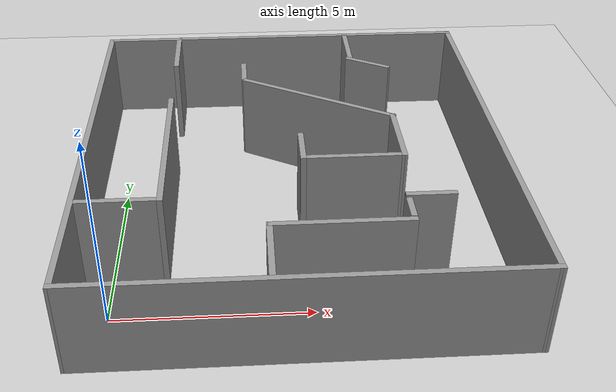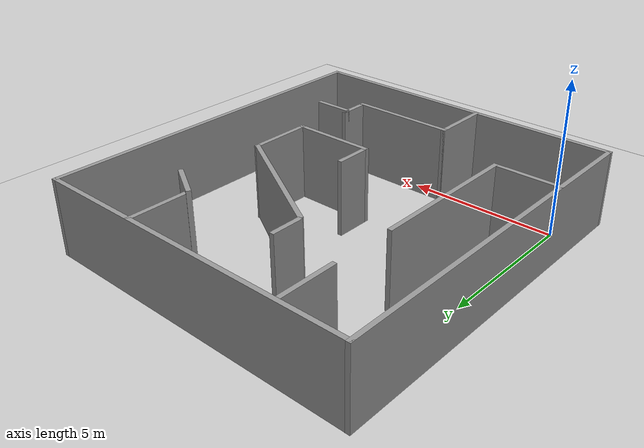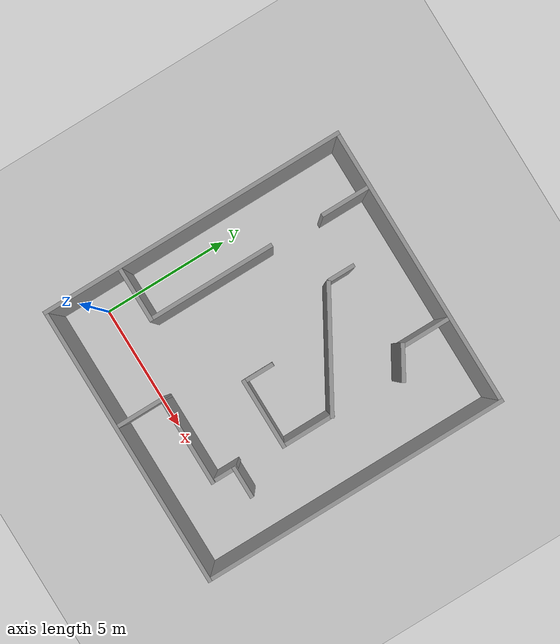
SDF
<sdf version="1.7">
 <world name="default">
  <light name="sun" type="directional">
   <pose>0 0 10 0 -0 0</pose>
   <diffuse>0.8 0.8 0.8 1</diffuse>
   <specular>0.2 0.2 0.2 1</specular>
   <attenuation>
    <range>1000</range>
    <constant>0.9</constant>
    <linear>0.01</linear>
    <quadratic>0.001</quadratic>
   </attenuation>
   <direction>-0.5 0.1 -0.9</direction>
   <spot><inner_angle>0</inner_angle><outer_angle>0</outer_angle><falloff>0</falloff></spot>
  </light>
  <model name="ground_plane">
   <static>1</static>
   <link name="link">
    <collision name="collision">
     <geometry><plane><normal>0 0 1</normal><size>100 100</size></plane></geometry>
     <surface><friction><ode><mu>100</mu><mu2>50</mu2></ode></friction></surface>
    </collision>
    <visual name="visual">
     <cast_shadows>0</cast_shadows>
     <geometry><plane><normal>0 0 1</normal><size>100 100</size></plane></geometry>
     <material>
      <script><uri>file://media/materials/scripts/gazebo.material</uri><name>Gazebo/Grey</name></script>
     </material>
    </visual>
   </link>
  </model>
  <gravity>0 0 -9.8</gravity>
  <magnetic_field>6e-06 2.3e-05 -4.2e-05</magnetic_field>
  <atmosphere type="adiabatic"/>
  <physics type="ode">
   <max_step_size>0.001</max_step_size>
   <real_time_factor>1</real_time_factor>
   <real_time_update_rate>1000</real_time_update_rate>
  </physics>
  <scene><ambient>0.4 0.4 0.4 1</ambient><background>0.7 0.7 0.7 1</background><shadows>1</shadows></scene>
  <spherical_coordinates>
   <surface_model>EARTH_WGS84</surface_model>
   <latitude_deg>0</latitude_deg>
   <longitude_deg>0</longitude_deg>
   <elevation>0</elevation>
   <heading_deg>0</heading_deg>
  </spherical_coordinates>
  <model name="Testing_Env_2_maze">
   <link name="Wall_12">
    <pose>-5.425 0.00186 0 0 -0 1.5708</pose>
    <visual name="Wall_12_Visual">
     <pose>0 0 1.25 0 -0 0</pose>
     <geometry><box><size>12 0.15 2.5</size></box></geometry>
     <material>
      <script><uri>file://media/materials/scripts/gazebo.material</uri><name>Gazebo/Grey</name></script>
      <ambient>1 1 1 1</ambient>
      <shader type="pixel"/>
     </material>
     <meta><layer>0</layer></meta>
    </visual>
    <collision name="Wall_12_Collision">
     <pose>0 0 1.25 0 -0 0</pose>
     <geometry><box><size>12 0.15 2.5</size></box></geometry>
     <surface>
      <friction>
       <ode><mu>1</mu><mu2>1</mu2><fdir1>0 0 0</fdir1><slip1>0</slip1><slip2>0</slip2></ode>
       <torsional>
        <coefficient>1</coefficient>
        <patch_radius>0</patch_radius>
        <surface_radius>0</surface_radius>
        <use_patch_radius>1</use_patch_radius>
        <ode><slip>0</slip></ode>
       </torsional>
      </friction>
      <bounce><restitution_coefficient>0</restitution_coefficient><threshold>1e+06</threshold></bounce>
      <contact>
       <collide_without_contact>0</collide_without_contact>
       <collide_without_contact_bitmask>1</collide_without_contact_bitmask>
       <collide_bitmask>1</collide_bitmask>
       <ode>
        <soft_cfm>0</soft_cfm>
        <soft_erp>0.2</soft_erp>
        <kp>1e+13</kp>
        <kd>1</kd>
        <max_vel>0.01</max_vel>
        <min_depth>0</min_depth>
       </ode>
       <bullet>
        <split_impulse>1</split_impulse>
        <split_impulse_penetration_threshold>-0.01</split_impulse_penetration_threshold>
        <soft_cfm>0</soft_cfm>
        <soft_erp>0.2</soft_erp>
        <kp>1e+13</kp>
        <kd>1</kd>
       </bullet>
      </contact>
     </surface>
    </collision>
   </link>
   <link name="Wall_18">
    <pose>0 -5.92499 0 0 0 -0.000341</pose>
    <visual name="Wall_18_Visual">
     <pose>0 0 1.25 0 -0 0</pose>
     <geometry><box><size>11 0.15 2.5</size></box></geometry>
     <material>
      <script><uri>file://media/materials/scripts/gazebo.material</uri><name>Gazebo/Grey</name></script>
      <ambient>1 1 1 1</ambient>
      <shader type="pixel"/>
     </material>
     <meta><layer>0</layer></meta>
    </visual>
    <collision name="Wall_18_Collision">
     <pose>0 0 1.25 0 -0 0</pose>
     <geometry><box><size>11 0.15 2.5</size></box></geometry>
     <surface>
      <friction>
       <ode><mu>1</mu><mu2>1</mu2><fdir1>0 0 0</fdir1><slip1>0</slip1><slip2>0</slip2></ode>
       <torsional>
        <coefficient>1</coefficient>
        <patch_radius>0</patch_radius>
        <surface_radius>0</surface_radius>
        <use_patch_radius>1</use_patch_radius>
        <ode><slip>0</slip></ode>
       </torsional>
      </friction>
      <bounce><restitution_coefficient>0</restitution_coefficient><threshold>1e+06</threshold></bounce>
      <contact>
       <collide_without_contact>0</collide_without_contact>
       <collide_without_contact_bitmask>1</collide_without_contact_bitmask>
       <collide_bitmask>1</collide_bitmask>
       <ode>
        <soft_cfm>0</soft_cfm>
        <soft_erp>0.2</soft_erp>
        <kp>1e+13</kp>
        <kd>1</kd>
        <max_vel>0.01</max_vel>
        <min_depth>0</min_depth>
       </ode>
       <bullet>
        <split_impulse>1</split_impulse>
        <split_impulse_penetration_threshold>-0.01</split_impulse_penetration_threshold>
        <soft_cfm>0</soft_cfm>
        <soft_erp>0.2</soft_erp>
        <kp>1e+13</kp>
        <kd>1</kd>
       </bullet>
      </contact>
     </surface>
    </collision>
   </link>
   <link name="Wall_20">
    <pose>5.425 -0.001836 0 0 -0 1.5708</pose>
    <visual name="Wall_20_Visual">
     <pose>0 0 1.25 0 -0 0</pose>
     <geometry><box><size>12 0.15 2.5</size></box></geometry>
     <material>
      <script><uri>file://media/materials/scripts/gazebo.material</uri><name>Gazebo/Grey</name></script>
      <ambient>1 1 1 1</ambient>
      <shader type="pixel"/>
     </material>
     <meta><layer>0</layer></meta>
    </visual>
    <collision name="Wall_20_Collision">
     <pose>0 0 1.25 0 -0 0</pose>
     <geometry><box><size>12 0.15 2.5</size></box></geometry>
     <surface>
      <friction>
       <ode><mu>1</mu><mu2>1</mu2><fdir1>0 0 0</fdir1><slip1>0</slip1><slip2>0</slip2></ode>
       <torsional>
        <coefficient>1</coefficient>
        <patch_radius>0</patch_radius>
        <surface_radius>0</surface_radius>
        <use_patch_radius>1</use_patch_radius>
        <ode><slip>0</slip></ode>
       </torsional>
      </friction>
      <bounce><restitution_coefficient>0</restitution_coefficient><threshold>1e+06</threshold></bounce>
      <contact>
       <collide_without_contact>0</collide_without_contact>
       <collide_without_contact_bitmask>1</collide_without_contact_bitmask>
       <collide_bitmask>1</collide_bitmask>
       <ode>
        <soft_cfm>0</soft_cfm>
        <soft_erp>0.2</soft_erp>
        <kp>1e+13</kp>
        <kd>1</kd>
        <max_vel>0.01</max_vel>
        <min_depth>0</min_depth>
       </ode>
       <bullet>
        <split_impulse>1</split_impulse>
        <split_impulse_penetration_threshold>-0.01</split_impulse_penetration_threshold>
        <soft_cfm>0</soft_cfm>
        <soft_erp>0.2</soft_erp>
        <kp>1e+13</kp>
        <kd>1</kd>
       </bullet>
      </contact>
     </surface>
    </collision>
   </link>
   <link name="Wall_22">
    <pose>0 5.92316 0 0 -0 3.14159</pose>
    <visual name="Wall_22_Visual">
     <pose>0 0 1.25 0 -0 0</pose>
     <geometry><box><size>11 0.15 2.5</size></box></geometry>
     <material>
      <script><uri>file://media/materials/scripts/gazebo.material</uri><name>Gazebo/Grey</name></script>
      <ambient>1 1 1 1</ambient>
      <shader type="pixel"/>
     </material>
     <meta><layer>0</layer></meta>
    </visual>
    <collision name="Wall_22_Collision">
     <pose>0 0 1.25 0 -0 0</pose>
     <geometry><box><size>11 0.15 2.5</size></box></geometry>
     <surface>
      <friction>
       <ode><mu>1</mu><mu2>1</mu2><fdir1>0 0 0</fdir1><slip1>0</slip1><slip2>0</slip2></ode>
       <torsional>
        <coefficient>1</coefficient>
        <patch_radius>0</patch_radius>
        <surface_radius>0</surface_radius>
        <use_patch_radius>1</use_patch_radius>
        <ode><slip>0</slip></ode>
       </torsional>
      </friction>
      <bounce><restitution_coefficient>0</restitution_coefficient><threshold>1e+06</threshold></bounce>
      <contact>
       <collide_without_contact>0</collide_without_contact>
       <collide_without_contact_bitmask>1</collide_without_contact_bitmask>
       <collide_bitmask>1</collide_bitmask>
       <ode>
        <soft_cfm>0</soft_cfm>
        <soft_erp>0.2</soft_erp>
        <kp>1e+13</kp>
        <kd>1</kd>
        <max_vel>0.01</max_vel>
        <min_depth>0</min_depth>
       </ode>
       <bullet>
        <split_impulse>1</split_impulse>
        <split_impulse_penetration_threshold>-0.01</split_impulse_penetration_threshold>
        <soft_cfm>0</soft_cfm>
        <soft_erp>0.2</soft_erp>
        <kp>1e+13</kp>
        <kd>1</kd>
       </bullet>
      </contact>
     </surface>
    </collision>
   </link>
   <link name="Wall_25">
    <pose>-0.762489 -4.98888 0 0 -0 1.5708</pose>
    <visual name="Wall_25_Visual">
     <pose>0 0 1.25 0 -0 0</pose>
     <geometry><box><size>2 0.15 2.5</size></box></geometry>
     <material>
      <script><uri>file://media/materials/scripts/gazebo.material</uri><name>Gazebo/Grey</name></script>
      <ambient>1 1 1 1</ambient>
      <shader type="pixel"/>
     </material>
     <meta><layer>0</layer></meta>
    </visual>
    <collision name="Wall_25_Collision">
     <pose>0 0 1.25 0 -0 0</pose>
     <geometry><box><size>2 0.15 2.5</size></box></geometry>
     <surface>
      <friction>
       <ode><mu>1</mu><mu2>1</mu2><fdir1>0 0 0</fdir1><slip1>0</slip1><slip2>0</slip2></ode>
       <torsional>
        <coefficient>1</coefficient>
        <patch_radius>0</patch_radius>
        <surface_radius>0</surface_radius>
        <use_patch_radius>1</use_patch_radius>
        <ode><slip>0</slip></ode>
       </torsional>
      </friction>
      <bounce><restitution_coefficient>0</restitution_coefficient><threshold>1e+06</threshold></bounce>
      <contact>
       <collide_without_contact>0</collide_without_contact>
       <collide_without_contact_bitmask>1</collide_without_contact_bitmask>
       <collide_bitmask>1</collide_bitmask>
       <ode>
        <soft_cfm>0</soft_cfm>
        <soft_erp>0.2</soft_erp>
        <kp>1e+13</kp>
        <kd>1</kd>
        <max_vel>0.01</max_vel>
        <min_depth>0</min_depth>
       </ode>
       <bullet>
        <split_impulse>1</split_impulse>
        <split_impulse_penetration_threshold>-0.01</split_impulse_penetration_threshold>
        <soft_cfm>0</soft_cfm>
        <soft_erp>0.2</soft_erp>
        <kp>1e+13</kp>
        <kd>1</kd>
       </bullet>
      </contact>
     </surface>
    </collision>
   </link>
   <link name="Wall_26">
    <pose>0.912511 -4.06388 0 0 -0 0</pose>
    <visual name="Wall_26_Visual">
     <pose>0 0 1.25 0 -0 0</pose>
     <geometry><box><size>3.5 0.15 2.5</size></box></geometry>
     <material>
      <script><uri>file://media/materials/scripts/gazebo.material</uri><name>Gazebo/Grey</name></script>
      <ambient>1 1 1 1</ambient>
      <shader type="pixel"/>
     </material>
     <meta><layer>0</layer></meta>
    </visual>
    <collision name="Wall_26_Collision">
     <pose>0 0 1.25 0 -0 0</pose>
     <geometry><box><size>3.5 0.15 2.5</size></box></geometry>
     <surface>
      <friction>
       <ode><mu>1</mu><mu2>1</mu2><fdir1>0 0 0</fdir1><slip1>0</slip1><slip2>0</slip2></ode>
       <torsional>
        <coefficient>1</coefficient>
        <patch_radius>0</patch_radius>
        <surface_radius>0</surface_radius>
        <use_patch_radius>1</use_patch_radius>
        <ode><slip>0</slip></ode>
       </torsional>
      </friction>
      <bounce><restitution_coefficient>0</restitution_coefficient><threshold>1e+06</threshold></bounce>
      <contact>
       <collide_without_contact>0</collide_without_contact>
       <collide_without_contact_bitmask>1</collide_without_contact_bitmask>
       <collide_bitmask>1</collide_bitmask>
       <ode>
        <soft_cfm>0</soft_cfm>
        <soft_erp>0.2</soft_erp>
        <kp>1e+13</kp>
        <kd>1</kd>
        <max_vel>0.01</max_vel>
        <min_depth>0</min_depth>
       </ode>
       <bullet>
        <split_impulse>1</split_impulse>
        <split_impulse_penetration_threshold>-0.01</split_impulse_penetration_threshold>
        <soft_cfm>0</soft_cfm>
        <soft_erp>0.2</soft_erp>
        <kp>1e+13</kp>
        <kd>1</kd>
       </bullet>
      </contact>
     </surface>
    </collision>
   </link>
   <link name="Wall_28">
    <pose>0.812159 1.81113 0 0 -0 2.61799</pose>
    <visual name="Wall_28_Visual">
     <pose>0 0 1.25 0 -0 0</pose>
     <geometry><box><size>4.75 0.15 2.5</size></box></geometry>
     <material>
      <script><uri>file://media/materials/scripts/gazebo.material</uri><name>Gazebo/Grey</name></script>
      <ambient>1 1 1 1</ambient>
      <shader type="pixel"/>
     </material>
     <meta><layer>0</layer></meta>
    </visual>
    <collision name="Wall_28_Collision">
     <pose>0 0 1.25 0 -0 0</pose>
     <geometry><box><size>4.75 0.15 2.5</size></box></geometry>
     <surface>
      <friction>
       <ode><mu>1</mu><mu2>1</mu2><fdir1>0 0 0</fdir1><slip1>0</slip1><slip2>0</slip2></ode>
       <torsional>
        <coefficient>1</coefficient>
        <patch_radius>0</patch_radius>
        <surface_radius>0</surface_radius>
        <use_patch_radius>1</use_patch_radius>
        <ode><slip>0</slip></ode>
       </torsional>
      </friction>
      <bounce><restitution_coefficient>0</restitution_coefficient><threshold>1e+06</threshold></bounce>
      <contact>
       <collide_without_contact>0</collide_without_contact>
       <collide_without_contact_bitmask>1</collide_without_contact_bitmask>
       <collide_bitmask>1</collide_bitmask>
       <ode>
        <soft_cfm>0</soft_cfm>
        <soft_erp>0.2</soft_erp>
        <kp>1e+13</kp>
        <kd>1</kd>
        <max_vel>0.01</max_vel>
        <min_depth>0</min_depth>
       </ode>
       <bullet>
        <split_impulse>1</split_impulse>
        <split_impulse_penetration_threshold>-0.01</split_impulse_penetration_threshold>
        <soft_cfm>0</soft_cfm>
        <soft_erp>0.2</soft_erp>
        <kp>1e+13</kp>
        <kd>1</kd>
       </bullet>
      </contact>
     </surface>
    </collision>
   </link>
   <link name="Wall_29">
    <pose>-1.2397 3.52016 0 0 -0 1.5708</pose>
    <inertial>
     <inertia><ixx>0</ixx><ixy>0</ixy><ixz>0</ixz><iyy>0</iyy><iyz>0</iyz><izz>0</izz></inertia>
     <mass>0</mass>
    </inertial>
    <visual name="Wall_29_Visual">
     <pose>0 0 1.25 0 -0 0</pose>
     <geometry><box><size>1.04632 0.15 2.5</size></box></geometry>
     <material>
      <script><uri>file://media/materials/scripts/gazebo.material</uri><name>Gazebo/Grey</name></script>
      <ambient>1 1 1 1</ambient>
      <shader type="pixel"/>
     </material>
     <meta><layer>0</layer></meta>
    </visual>
    <collision name="Wall_29_Collision">
     <pose>0 0 1.25 0 -0 0</pose>
     <geometry><box><size>1.04632 0.15 2.5</size></box></geometry>
     <surface>
      <friction>
       <ode><mu>1</mu><mu2>1</mu2><fdir1>0 0 0</fdir1><slip1>0</slip1><slip2>0</slip2></ode>
       <torsional>
        <coefficient>1</coefficient>
        <patch_radius>0</patch_radius>
        <surface_radius>0</surface_radius>
        <use_patch_radius>1</use_patch_radius>
        <ode><slip>0</slip></ode>
       </torsional>
      </friction>
      <bounce><restitution_coefficient>0</restitution_coefficient><threshold>1e+06</threshold></bounce>
      <contact>
       <collide_without_contact>0</collide_without_contact>
       <collide_without_contact_bitmask>1</collide_without_contact_bitmask>
       <collide_bitmask>1</collide_bitmask>
       <ode>
        <soft_cfm>0</soft_cfm>
        <soft_erp>0.2</soft_erp>
        <kp>1e+13</kp>
        <kd>1</kd>
        <max_vel>0.01</max_vel>
        <min_depth>0</min_depth>
       </ode>
       <bullet>
        <split_impulse>1</split_impulse>
        <split_impulse_penetration_threshold>-0.01</split_impulse_penetration_threshold>
        <soft_cfm>0</soft_cfm>
        <soft_erp>0.2</soft_erp>
        <kp>1e+13</kp>
        <kd>1</kd>
       </bullet>
      </contact>
     </surface>
    </collision>
   </link>
   <link name="Wall_31">
    <pose>2.04308 4.99406 0 0 0 -1.5708</pose>
    <visual name="Wall_31_Visual">
     <pose>0 0 1.25 0 -0 0</pose>
     <geometry><box><size>2 0.15 2.5</size></box></geometry>
     <material>
      <script><uri>file://media/materials/scripts/gazebo.material</uri><name>Gazebo/Grey</name></script>
      <ambient>1 1 1 1</ambient>
      <shader type="pixel"/>
     </material>
     <meta><layer>0</layer></meta>
    </visual>
    <collision name="Wall_31_Collision">
     <pose>0 0 1.25 0 -0 0</pose>
     <geometry><box><size>2 0.15 2.5</size></box></geometry>
     <surface>
      <friction>
       <ode><mu>1</mu><mu2>1</mu2><fdir1>0 0 0</fdir1><slip1>0</slip1><slip2>0</slip2></ode>
       <torsional>
        <coefficient>1</coefficient>
        <patch_radius>0</patch_radius>
        <surface_radius>0</surface_radius>
        <use_patch_radius>1</use_patch_radius>
        <ode><slip>0</slip></ode>
       </torsional>
      </friction>
      <bounce><restitution_coefficient>0</restitution_coefficient><threshold>1e+06</threshold></bounce>
      <contact>
       <collide_without_contact>0</collide_without_contact>
       <collide_without_contact_bitmask>1</collide_without_contact_bitmask>
       <collide_bitmask>1</collide_bitmask>
       <ode>
        <soft_cfm>0</soft_cfm>
        <soft_erp>0.2</soft_erp>
        <kp>1e+13</kp>
        <kd>1</kd>
        <max_vel>0.01</max_vel>
        <min_depth>0</min_depth>
       </ode>
       <bullet>
        <split_impulse>1</split_impulse>
        <split_impulse_penetration_threshold>-0.01</split_impulse_penetration_threshold>
        <soft_cfm>0</soft_cfm>
        <soft_erp>0.2</soft_erp>
        <kp>1e+13</kp>
        <kd>1</kd>
       </bullet>
      </contact>
     </surface>
    </collision>
   </link>
   <link name="Wall_33">
    <pose>1.50938 -1.31622 0 0 -0 3.14159</pose>
    <visual name="Wall_33_Visual">
     <pose>0 0 1.25 0 -0 0</pose>
     <geometry><box><size>2.75 0.15 2.5</size></box></geometry>
     <material>
      <script><uri>file://media/materials/scripts/gazebo.material</uri><name>Gazebo/Grey</name></script>
      <ambient>1 1 1 1</ambient>
      <shader type="pixel"/>
     </material>
     <meta><layer>0</layer></meta>
    </visual>
    <collision name="Wall_33_Collision">
     <pose>0 0 1.25 0 -0 0</pose>
     <geometry><box><size>2.75 0.15 2.5</size></box></geometry>
     <surface>
      <friction>
       <ode><mu>1</mu><mu2>1</mu2><fdir1>0 0 0</fdir1><slip1>0</slip1><slip2>0</slip2></ode>
       <torsional>
        <coefficient>1</coefficient>
        <patch_radius>0</patch_radius>
        <surface_radius>0</surface_radius>
        <use_patch_radius>1</use_patch_radius>
        <ode><slip>0</slip></ode>
       </torsional>
      </friction>
      <bounce><restitution_coefficient>0</restitution_coefficient><threshold>1e+06</threshold></bounce>
      <contact>
       <collide_without_contact>0</collide_without_contact>
       <collide_without_contact_bitmask>1</collide_without_contact_bitmask>
       <collide_bitmask>1</collide_bitmask>
       <ode>
        <soft_cfm>0</soft_cfm>
        <soft_erp>0.2</soft_erp>
        <kp>1e+13</kp>
        <kd>1</kd>
        <max_vel>0.01</max_vel>
        <min_depth>0</min_depth>
       </ode>
       <bullet>
        <split_impulse>1</split_impulse>
        <split_impulse_penetration_threshold>-0.01</split_impulse_penetration_threshold>
        <soft_cfm>0</soft_cfm>
        <soft_erp>0.2</soft_erp>
        <kp>1e+13</kp>
        <kd>1</kd>
       </bullet>
      </contact>
     </surface>
    </collision>
   </link>
   <link name="Wall_37">
    <pose>2.8067 -0.32755 0 0 -0 1.57351</pose>
    <visual name="Wall_37_Visual">
     <pose>0 0 1.25 0 -0 0</pose>
     <geometry><box><size>2.12736 0.15 2.5</size></box></geometry>
     <material>
      <script><uri>file://media/materials/scripts/gazebo.material</uri><name>Gazebo/Grey</name></script>
      <ambient>1 1 1 1</ambient>
      <shader type="pixel"/>
     </material>
     <meta><layer>0</layer></meta>
    </visual>
    <collision name="Wall_37_Collision">
     <pose>0 0 1.25 0 -0 0</pose>
     <geometry><box><size>2.12736 0.15 2.5</size></box></geometry>
     <surface>
      <friction>
       <ode><mu>1</mu><mu2>1</mu2><fdir1>0 0 0</fdir1><slip1>0</slip1><slip2>0</slip2></ode>
       <torsional>
        <coefficient>1</coefficient>
        <patch_radius>0</patch_radius>
        <surface_radius>0</surface_radius>
        <use_patch_radius>1</use_patch_radius>
        <ode><slip>0</slip></ode>
       </torsional>
      </friction>
      <bounce><restitution_coefficient>0</restitution_coefficient><threshold>1e+06</threshold></bounce>
      <contact>
       <collide_without_contact>0</collide_without_contact>
       <collide_without_contact_bitmask>1</collide_without_contact_bitmask>
       <collide_bitmask>1</collide_bitmask>
       <ode>
        <soft_cfm>0</soft_cfm>
        <soft_erp>0.2</soft_erp>
        <kp>1e+13</kp>
        <kd>1</kd>
        <max_vel>0.01</max_vel>
        <min_depth>0</min_depth>
       </ode>
       <bullet>
        <split_impulse>1</split_impulse>
        <split_impulse_penetration_threshold>-0.01</split_impulse_penetration_threshold>
        <soft_cfm>0</soft_cfm>
        <soft_erp>0.2</soft_erp>
        <kp>1e+13</kp>
        <kd>1</kd>
       </bullet>
      </contact>
     </surface>
    </collision>
   </link>
   <link name="Wall_39">
    <pose>2.58751 -3.51388 0 0 -0 1.5708</pose>
    <inertial>
     <inertia><ixx>0</ixx><ixy>0</ixy><ixz>0</ixz><iyy>0</iyy><iyz>0</iyz><izz>0</izz></inertia>
     <mass>0</mass>
    </inertial>
    <visual name="Wall_39_Visual">
     <pose>0 0 1.25 0 -0 0</pose>
     <geometry><box><size>0.915143 0.15 2.5</size></box></geometry>
     <material>
      <script><uri>file://media/materials/scripts/gazebo.material</uri><name>Gazebo/Grey</name></script>
      <ambient>1 1 1 1</ambient>
      <shader type="pixel"/>
     </material>
     <meta><layer>0</layer></meta>
    </visual>
    <collision name="Wall_39_Collision">
     <pose>0 0 1.25 0 -0 0</pose>
     <geometry><box><size>0.915143 0.15 2.5</size></box></geometry>
     <surface>
      <friction>
       <ode><mu>1</mu><mu2>1</mu2><fdir1>0 0 0</fdir1><slip1>0</slip1><slip2>0</slip2></ode>
       <torsional>
        <coefficient>1</coefficient>
        <patch_radius>0</patch_radius>
        <surface_radius>0</surface_radius>
        <use_patch_radius>1</use_patch_radius>
        <ode><slip>0</slip></ode>
       </torsional>
      </friction>
      <bounce><restitution_coefficient>0</restitution_coefficient><threshold>1e+06</threshold></bounce>
      <contact>
       <collide_without_contact>0</collide_without_contact>
       <collide_without_contact_bitmask>1</collide_without_contact_bitmask>
       <collide_bitmask>1</collide_bitmask>
       <ode>
        <soft_cfm>0</soft_cfm>
        <soft_erp>0.2</soft_erp>
        <kp>1e+13</kp>
        <kd>1</kd>
        <max_vel>0.01</max_vel>
        <min_depth>0</min_depth>
       </ode>
       <bullet>
        <split_impulse>1</split_impulse>
        <split_impulse_penetration_threshold>-0.01</split_impulse_penetration_threshold>
        <soft_cfm>0</soft_cfm>
        <soft_erp>0.2</soft_erp>
        <kp>1e+13</kp>
        <kd>1</kd>
       </bullet>
      </contact>
     </surface>
    </collision>
   </link>
   <link name="Wall_40">
    <pose>3.13751 -3.16583 0.059987 0 -0 0</pose>
    <visual name="Wall_40_Visual">
     <pose>0 0 1.25 0 -0 0</pose>
     <geometry><box><size>1.25 0.15 2.5</size></box></geometry>
     <material>
      <script><uri>file://media/materials/scripts/gazebo.material</uri><name>Gazebo/Grey</name></script>
      <ambient>1 1 1 1</ambient>
      <shader type="pixel"/>
     </material>
     <meta><layer>0</layer></meta>
    </visual>
    <collision name="Wall_40_Collision">
     <pose>0 0 1.25 0 -0 0</pose>
     <geometry><box><size>1.25 0.15 2.5</size></box></geometry>
     <surface>
      <friction>
       <ode><mu>1</mu><mu2>1</mu2><fdir1>0 0 0</fdir1><slip1>0</slip1><slip2>0</slip2></ode>
       <torsional>
        <coefficient>1</coefficient>
        <patch_radius>0</patch_radius>
        <surface_radius>0</surface_radius>
        <use_patch_radius>1</use_patch_radius>
        <ode><slip>0</slip></ode>
       </torsional>
      </friction>
      <bounce><restitution_coefficient>0</restitution_coefficient><threshold>1e+06</threshold></bounce>
      <contact>
       <collide_without_contact>0</collide_without_contact>
       <collide_without_contact_bitmask>1</collide_without_contact_bitmask>
       <collide_bitmask>1</collide_bitmask>
       <ode>
        <soft_cfm>0</soft_cfm>
        <soft_erp>0.2</soft_erp>
        <kp>1e+13</kp>
        <kd>1</kd>
        <max_vel>0.01</max_vel>
        <min_depth>0</min_depth>
       </ode>
       <bullet>
        <split_impulse>1</split_impulse>
        <split_impulse_penetration_threshold>-0.01</split_impulse_penetration_threshold>
        <soft_cfm>0</soft_cfm>
        <soft_erp>0.2</soft_erp>
        <kp>1e+13</kp>
        <kd>1</kd>
       </bullet>
      </contact>
     </surface>
    </collision>
   </link>
   <link name="Wall_42">
    <pose>-4.37354 -2.93956 0 0 -0 0</pose>
    <visual name="Wall_42_Visual">
     <pose>0 0 1.25 0 -0 0</pose>
     <geometry><box><size>2.25 0.15 2.5</size></box></geometry>
     <material>
      <script><uri>file://media/materials/scripts/gazebo.material</uri><name>Gazebo/Grey</name></script>
      <ambient>1 1 1 1</ambient>
      <shader type="pixel"/>
     </material>
     <meta><layer>0</layer></meta>
    </visual>
    <collision name="Wall_42_Collision">
     <pose>0 0 1.25 0 -0 0</pose>
     <geometry><box><size>2.25 0.15 2.5</size></box></geometry>
     <surface>
      <friction>
       <ode><mu>1</mu><mu2>1</mu2><fdir1>0 0 0</fdir1><slip1>0</slip1><slip2>0</slip2></ode>
       <torsional>
        <coefficient>1</coefficient>
        <patch_radius>0</patch_radius>
        <surface_radius>0</surface_radius>
        <use_patch_radius>1</use_patch_radius>
        <ode><slip>0</slip></ode>
       </torsional>
      </friction>
      <bounce><restitution_coefficient>0</restitution_coefficient><threshold>1e+06</threshold></bounce>
      <contact>
       <collide_without_contact>0</collide_without_contact>
       <collide_without_contact_bitmask>1</collide_without_contact_bitmask>
       <collide_bitmask>1</collide_bitmask>
       <ode>
        <soft_cfm>0</soft_cfm>
        <soft_erp>0.2</soft_erp>
        <kp>1e+13</kp>
        <kd>1</kd>
        <max_vel>0.01</max_vel>
        <min_depth>0</min_depth>
       </ode>
       <bullet>
        <split_impulse>1</split_impulse>
        <split_impulse_penetration_threshold>-0.01</split_impulse_penetration_threshold>
        <soft_cfm>0</soft_cfm>
        <soft_erp>0.2</soft_erp>
        <kp>1e+13</kp>
        <kd>1</kd>
       </bullet>
      </contact>
     </surface>
    </collision>
   </link>
   <link name="Wall_43">
    <pose>-3.32354 -0.514562 0 0 -0 1.5708</pose>
    <visual name="Wall_43_Visual">
     <pose>0 0 1.25 0 -0 0</pose>
     <geometry><box><size>5 0.15 2.5</size></box></geometry>
     <material>
      <script><uri>file://media/materials/scripts/gazebo.material</uri><name>Gazebo/Grey</name></script>
      <ambient>1 1 1 1</ambient>
      <shader type="pixel"/>
     </material>
     <meta><layer>0</layer></meta>
    </visual>
    <collision name="Wall_43_Collision">
     <pose>0 0 1.25 0 -0 0</pose>
     <geometry><box><size>5 0.15 2.5</size></box></geometry>
     <surface>
      <friction>
       <ode><mu>1</mu><mu2>1</mu2><fdir1>0 0 0</fdir1><slip1>0</slip1><slip2>0</slip2></ode>
       <torsional>
        <coefficient>1</coefficient>
        <patch_radius>0</patch_radius>
        <surface_radius>0</surface_radius>
        <use_patch_radius>1</use_patch_radius>
        <ode><slip>0</slip></ode>
       </torsional>
      </friction>
      <bounce><restitution_coefficient>0</restitution_coefficient><threshold>1e+06</threshold></bounce>
      <contact>
       <collide_without_contact>0</collide_without_contact>
       <collide_without_contact_bitmask>1</collide_without_contact_bitmask>
       <collide_bitmask>1</collide_bitmask>
       <ode>
        <soft_cfm>0</soft_cfm>
        <soft_erp>0.2</soft_erp>
        <kp>1e+13</kp>
        <kd>1</kd>
        <max_vel>0.01</max_vel>
        <min_depth>0</min_depth>
       </ode>
       <bullet>
        <split_impulse>1</split_impulse>
        <split_impulse_penetration_threshold>-0.01</split_impulse_penetration_threshold>
        <soft_cfm>0</soft_cfm>
        <soft_erp>0.2</soft_erp>
        <kp>1e+13</kp>
        <kd>1</kd>
       </bullet>
      </contact>
     </surface>
    </collision>
   </link>
   <link name="Wall_48">
    <pose>2.51401 3.70907 0.092406 0 0 -0.523599</pose>
    <inertial>
     <inertia><ixx>0</ixx><ixy>0</ixy><ixz>0</ixz><iyy>0</iyy><iyz>0</iyz><izz>0</izz></inertia>
     <mass>0</mass>
    </inertial>
    <visual name="Wall_48_Visual">
     <pose>0 0 1.25 0 -0 0</pose>
     <geometry><box><size>1.39202 0.15 2.5</size></box></geometry>
     <material>
      <script><uri>file://media/materials/scripts/gazebo.material</uri><name>Gazebo/Grey</name></script>
      <ambient>1 1 1 1</ambient>
      <shader type="pixel"/>
     </material>
     <meta><layer>0</layer></meta>
    </visual>
    <collision name="Wall_48_Collision">
     <pose>0 0 1.25 0 -0 0</pose>
     <geometry><box><size>1.39202 0.15 2.5</size></box></geometry>
     <surface>
      <friction>
       <ode><mu>1</mu><mu2>1</mu2><fdir1>0 0 0</fdir1><slip1>0</slip1><slip2>0</slip2></ode>
       <torsional>
        <coefficient>1</coefficient>
        <patch_radius>0</patch_radius>
        <surface_radius>0</surface_radius>
        <use_patch_radius>1</use_patch_radius>
        <ode><slip>0</slip></ode>
       </torsional>
      </friction>
      <bounce><restitution_coefficient>0</restitution_coefficient><threshold>1e+06</threshold></bounce>
      <contact>
       <collide_without_contact>0</collide_without_contact>
       <collide_without_contact_bitmask>1</collide_without_contact_bitmask>
       <collide_bitmask>1</collide_bitmask>
       <ode>
        <soft_cfm>0</soft_cfm>
        <soft_erp>0.2</soft_erp>
        <kp>1e+13</kp>
        <kd>1</kd>
        <max_vel>0.01</max_vel>
        <min_depth>0</min_depth>
       </ode>
       <bullet>
        <split_impulse>1</split_impulse>
        <split_impulse_penetration_threshold>-0.01</split_impulse_penetration_threshold>
        <soft_cfm>0</soft_cfm>
        <soft_erp>0.2</soft_erp>
        <kp>1e+13</kp>
        <kd>1</kd>
       </bullet>
      </contact>
     </surface>
    </collision>
   </link>
   <link name="Wall_53">
    <pose>-3.28518 4.98465 0 0 0 -1.5708</pose>
    <visual name="Wall_53_Visual">
     <pose>0 0 1.25 0 -0 0</pose>
     <geometry><box><size>2 0.15 2.5</size></box></geometry>
     <material>
      <script><uri>file://media/materials/scripts/gazebo.material</uri><name>Gazebo/Grey</name></script>
      <ambient>1 1 1 1</ambient>
      <shader type="pixel"/>
     </material>
     <meta><layer>0</layer></meta>
    </visual>
    <collision name="Wall_53_Collision">
     <pose>0 0 1.25 0 -0 0</pose>
     <geometry><box><size>2 0.15 2.5</size></box></geometry>
     <surface>
      <friction>
       <ode><mu>1</mu><mu2>1</mu2><fdir1>0 0 0</fdir1><slip1>0</slip1><slip2>0</slip2></ode>
       <torsional>
        <coefficient>1</coefficient>
        <patch_radius>0</patch_radius>
        <surface_radius>0</surface_radius>
        <use_patch_radius>1</use_patch_radius>
        <ode><slip>0</slip></ode>
       </torsional>
      </friction>
      <bounce><restitution_coefficient>0</restitution_coefficient><threshold>1e+06</threshold></bounce>
      <contact>
       <collide_without_contact>0</collide_without_contact>
       <collide_without_contact_bitmask>1</collide_without_contact_bitmask>
       <collide_bitmask>1</collide_bitmask>
       <ode>
        <soft_cfm>0</soft_cfm>
        <soft_erp>0.2</soft_erp>
        <kp>1e+13</kp>
        <kd>1</kd>
        <max_vel>0.01</max_vel>
        <min_depth>0</min_depth>
       </ode>
       <bullet>
        <split_impulse>1</split_impulse>
        <split_impulse_penetration_threshold>-0.01</split_impulse_penetration_threshold>
        <soft_cfm>0</soft_cfm>
        <soft_erp>0.2</soft_erp>
        <kp>1e+13</kp>
        <kd>1</kd>
       </bullet>
      </contact>
     </surface>
    </collision>
   </link>
   <link name="Wall_55">
    <pose>0.209379 -0.766225 0 0 -0 1.5708</pose>
    <visual name="Wall_55_Visual">
     <pose>0 0 1.25 0 -0 0</pose>
     <geometry><box><size>1.25 0.15 2.5</size></box></geometry>
     <material>
      <script><uri>file://media/materials/scripts/gazebo.material</uri><name>Gazebo/Grey</name></script>
      <ambient>1 1 1 1</ambient>
      <shader type="pixel"/>
     </material>
     <meta><layer>0</layer></meta>
    </visual>
    <collision name="Wall_55_Collision">
     <pose>0 0 1.25 0 -0 0</pose>
     <geometry><box><size>1.25 0.15 2.5</size></box></geometry>
     <surface>
      <friction>
       <ode><mu>1</mu><mu2>1</mu2><fdir1>0 0 0</fdir1><slip1>0</slip1><slip2>0</slip2></ode>
       <torsional>
        <coefficient>1</coefficient>
        <patch_radius>0</patch_radius>
        <surface_radius>0</surface_radius>
        <use_patch_radius>1</use_patch_radius>
        <ode><slip>0</slip></ode>
       </torsional>
      </friction>
      <bounce><restitution_coefficient>0</restitution_coefficient><threshold>1e+06</threshold></bounce>
      <contact>
       <collide_without_contact>0</collide_without_contact>
       <collide_without_contact_bitmask>1</collide_without_contact_bitmask>
       <collide_bitmask>1</collide_bitmask>
       <ode>
        <soft_cfm>0</soft_cfm>
        <soft_erp>0.2</soft_erp>
        <kp>1e+13</kp>
        <kd>1</kd>
        <max_vel>0.01</max_vel>
        <min_depth>0</min_depth>
       </ode>
       <bullet>
        <split_impulse>1</split_impulse>
        <split_impulse_penetration_threshold>-0.01</split_impulse_penetration_threshold>
        <soft_cfm>0</soft_cfm>
        <soft_erp>0.2</soft_erp>
        <kp>1e+13</kp>
        <kd>1</kd>
       </bullet>
      </contact>
     </surface>
    </collision>
   </link>
   <static>1</static>
   <pose>4.65221 4.36906 0 0 -0 0</pose>
  </model>
 </world>
</sdf>
